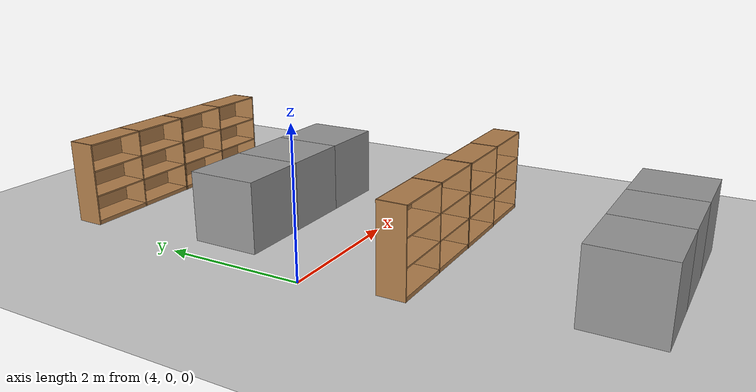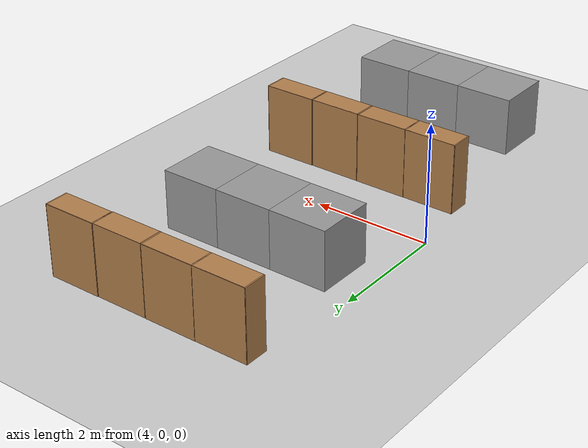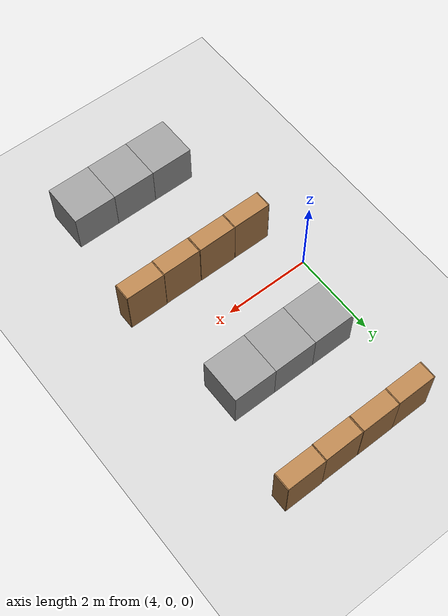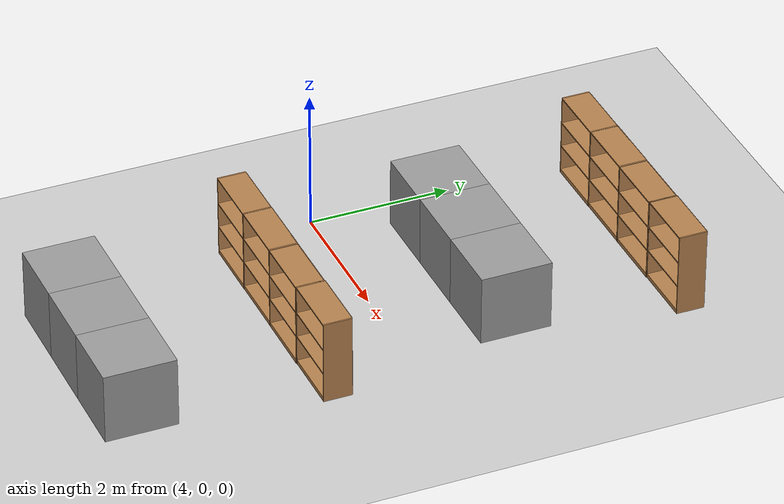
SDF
<sdf version="1.6">
 <world name="default">
  <model name="ground_plane">
   <static>1</static>
   <link name="link">
    <collision name="collision">
     <geometry><plane><normal>0 0 1</normal><size>100 100</size></plane></geometry>
     <surface>
      <contact><collide_bitmask>65535</collide_bitmask></contact>
      <friction><ode><mu>100</mu><mu2>50</mu2></ode></friction>
     </surface>
    </collision>
    <visual name="visual">
     <cast_shadows>0</cast_shadows>
     <geometry><plane><normal>0 0 1</normal><size>100 100</size></plane></geometry>
     <material>
      <script><uri>file://media/materials/scripts/gazebo.material</uri><name>Gazebo/Grey</name></script>
     </material>
    </visual>
   </link>
  </model>
  <model name="shelf_clone_0_clone">
   <model name="bookshelf">
    <static>1</static>
    <link name="link">
     <inertial><mass>1</mass></inertial>
     <collision name="back">
      <pose>0 0.005 0.6 0 -0 0</pose>
      <geometry><box><size>0.9 0.01 1.2</size></box></geometry>
     </collision>
     <visual name="visual1">
      <pose>0 0.005 0.6 0 -0 0</pose>
      <geometry><box><size>0.9 0.01 1.2</size></box></geometry>
      <material>
       <script><uri>file://media/materials/scripts/gazebo.material</uri><name>Gazebo/Wood</name></script>
      </material>
     </visual>
     <collision name="left_side">
      <pose>0.45 -0.195 0.6 0 -0 0</pose>
      <geometry><box><size>0.02 0.4 1.2</size></box></geometry>
     </collision>
     <visual name="visual2">
      <pose>0.45 -0.195 0.6 0 -0 0</pose>
      <geometry><box><size>0.02 0.4 1.2</size></box></geometry>
      <material>
       <script><uri>file://media/materials/scripts/gazebo.material</uri><name>Gazebo/Wood</name></script>
      </material>
     </visual>
     <collision name="right_side">
      <pose>-0.45 -0.195 0.6 0 -0 0</pose>
      <geometry><box><size>0.02 0.4 1.2</size></box></geometry>
     </collision>
     <visual name="visual3">
      <pose>-0.45 -0.195 0.6 0 -0 0</pose>
      <geometry><box><size>0.02 0.4 1.2</size></box></geometry>
      <material>
       <script><uri>file://media/materials/scripts/gazebo.material</uri><name>Gazebo/Wood</name></script>
      </material>
     </visual>
     <collision name="bottom">
      <pose>0 -0.195 0.03 0 -0 0</pose>
      <geometry><box><size>0.88 0.4 0.06</size></box></geometry>
     </collision>
     <visual name="visual4">
      <pose>0 -0.195 0.03 0 -0 0</pose>
      <geometry><box><size>0.88 0.4 0.06</size></box></geometry>
      <material>
       <script><uri>file://media/materials/scripts/gazebo.material</uri><name>Gazebo/Wood</name></script>
      </material>
     </visual>
     <collision name="top">
      <pose>0 -0.195 1.19 0 -0 0</pose>
      <geometry><box><size>0.88 0.4 0.02</size></box></geometry>
     </collision>
     <visual name="visual5">
      <pose>0 -0.195 1.19 0 -0 0</pose>
      <geometry><box><size>0.88 0.4 0.02</size></box></geometry>
      <material>
       <script><uri>file://media/materials/scripts/gazebo.material</uri><name>Gazebo/Wood</name></script>
      </material>
     </visual>
     <collision name="low_shelf">
      <pose>0 -0.195 0.43 0 -0 0</pose>
      <geometry><box><size>0.88 0.4 0.02</size></box></geometry>
     </collision>
     <visual name="visual6">
      <pose>0 -0.195 0.43 0 -0 0</pose>
      <geometry><box><size>0.88 0.4 0.02</size></box></geometry>
      <material>
       <script><uri>file://media/materials/scripts/gazebo.material</uri><name>Gazebo/Wood</name></script>
      </material>
     </visual>
     <collision name="high_shelf">
      <pose>0 -0.195 0.8 0 -0 0</pose>
      <geometry><box><size>0.88 0.4 0.02</size></box></geometry>
     </collision>
     <visual name="visual7">
      <pose>0 -0.195 0.8 0 -0 0</pose>
      <geometry><box><size>0.88 0.4 0.02</size></box></geometry>
      <material>
       <script><uri>file://media/materials/scripts/gazebo.material</uri><name>Gazebo/Wood</name></script>
      </material>
     </visual>
    </link>
    <pose>-1.36031 -0.003398 0 0 -0 0</pose>
   </model>
   <model name="bookshelf_clone">
    <static>1</static>
    <link name="link">
     <inertial><mass>1</mass></inertial>
     <collision name="back">
      <pose>0 0.005 0.6 0 -0 0</pose>
      <geometry><box><size>0.9 0.01 1.2</size></box></geometry>
     </collision>
     <visual name="visual1">
      <pose>0 0.005 0.6 0 -0 0</pose>
      <geometry><box><size>0.9 0.01 1.2</size></box></geometry>
      <material>
       <script><uri>file://media/materials/scripts/gazebo.material</uri><name>Gazebo/Wood</name></script>
      </material>
     </visual>
     <collision name="left_side">
      <pose>0.45 -0.195 0.6 0 -0 0</pose>
      <geometry><box><size>0.02 0.4 1.2</size></box></geometry>
     </collision>
     <visual name="visual2">
      <pose>0.45 -0.195 0.6 0 -0 0</pose>
      <geometry><box><size>0.02 0.4 1.2</size></box></geometry>
      <material>
       <script><uri>file://media/materials/scripts/gazebo.material</uri><name>Gazebo/Wood</name></script>
      </material>
     </visual>
     <collision name="right_side">
      <pose>-0.45 -0.195 0.6 0 -0 0</pose>
      <geometry><box><size>0.02 0.4 1.2</size></box></geometry>
     </collision>
     <visual name="visual3">
      <pose>-0.45 -0.195 0.6 0 -0 0</pose>
      <geometry><box><size>0.02 0.4 1.2</size></box></geometry>
      <material>
       <script><uri>file://media/materials/scripts/gazebo.material</uri><name>Gazebo/Wood</name></script>
      </material>
     </visual>
     <collision name="bottom">
      <pose>0 -0.195 0.03 0 -0 0</pose>
      <geometry><box><size>0.88 0.4 0.06</size></box></geometry>
     </collision>
     <visual name="visual4">
      <pose>0 -0.195 0.03 0 -0 0</pose>
      <geometry><box><size>0.88 0.4 0.06</size></box></geometry>
      <material>
       <script><uri>file://media/materials/scripts/gazebo.material</uri><name>Gazebo/Wood</name></script>
      </material>
     </visual>
     <collision name="top">
      <pose>0 -0.195 1.19 0 -0 0</pose>
      <geometry><box><size>0.88 0.4 0.02</size></box></geometry>
     </collision>
     <visual name="visual5">
      <pose>0 -0.195 1.19 0 -0 0</pose>
      <geometry><box><size>0.88 0.4 0.02</size></box></geometry>
      <material>
       <script><uri>file://media/materials/scripts/gazebo.material</uri><name>Gazebo/Wood</name></script>
      </material>
     </visual>
     <collision name="low_shelf">
      <pose>0 -0.195 0.43 0 -0 0</pose>
      <geometry><box><size>0.88 0.4 0.02</size></box></geometry>
     </collision>
     <visual name="visual6">
      <pose>0 -0.195 0.43 0 -0 0</pose>
      <geometry><box><size>0.88 0.4 0.02</size></box></geometry>
      <material>
       <script><uri>file://media/materials/scripts/gazebo.material</uri><name>Gazebo/Wood</name></script>
      </material>
     </visual>
     <collision name="high_shelf">
      <pose>0 -0.195 0.8 0 -0 0</pose>
      <geometry><box><size>0.88 0.4 0.02</size></box></geometry>
     </collision>
     <visual name="visual7">
      <pose>0 -0.195 0.8 0 -0 0</pose>
      <geometry><box><size>0.88 0.4 0.02</size></box></geometry>
      <material>
       <script><uri>file://media/materials/scripts/gazebo.material</uri><name>Gazebo/Wood</name></script>
      </material>
     </visual>
    </link>
    <pose>-0.456544 -0.000114 0 0 -0 0</pose>
   </model>
   <model name="bookshelf_clone_clone">
    <static>1</static>
    <link name="link">
     <inertial><mass>1</mass></inertial>
     <collision name="back">
      <pose>0 0.005 0.6 0 -0 0</pose>
      <geometry><box><size>0.9 0.01 1.2</size></box></geometry>
     </collision>
     <visual name="visual1">
      <pose>0 0.005 0.6 0 -0 0</pose>
      <geometry><box><size>0.9 0.01 1.2</size></box></geometry>
      <material>
       <script><uri>file://media/materials/scripts/gazebo.material</uri><name>Gazebo/Wood</name></script>
      </material>
     </visual>
     <collision name="left_side">
      <pose>0.45 -0.195 0.6 0 -0 0</pose>
      <geometry><box><size>0.02 0.4 1.2</size></box></geometry>
     </collision>
     <visual name="visual2">
      <pose>0.45 -0.195 0.6 0 -0 0</pose>
      <geometry><box><size>0.02 0.4 1.2</size></box></geometry>
      <material>
       <script><uri>file://media/materials/scripts/gazebo.material</uri><name>Gazebo/Wood</name></script>
      </material>
     </visual>
     <collision name="right_side">
      <pose>-0.45 -0.195 0.6 0 -0 0</pose>
      <geometry><box><size>0.02 0.4 1.2</size></box></geometry>
     </collision>
     <visual name="visual3">
      <pose>-0.45 -0.195 0.6 0 -0 0</pose>
      <geometry><box><size>0.02 0.4 1.2</size></box></geometry>
      <material>
       <script><uri>file://media/materials/scripts/gazebo.material</uri><name>Gazebo/Wood</name></script>
      </material>
     </visual>
     <collision name="bottom">
      <pose>0 -0.195 0.03 0 -0 0</pose>
      <geometry><box><size>0.88 0.4 0.06</size></box></geometry>
     </collision>
     <visual name="visual4">
      <pose>0 -0.195 0.03 0 -0 0</pose>
      <geometry><box><size>0.88 0.4 0.06</size></box></geometry>
      <material>
       <script><uri>file://media/materials/scripts/gazebo.material</uri><name>Gazebo/Wood</name></script>
      </material>
     </visual>
     <collision name="top">
      <pose>0 -0.195 1.19 0 -0 0</pose>
      <geometry><box><size>0.88 0.4 0.02</size></box></geometry>
     </collision>
     <visual name="visual5">
      <pose>0 -0.195 1.19 0 -0 0</pose>
      <geometry><box><size>0.88 0.4 0.02</size></box></geometry>
      <material>
       <script><uri>file://media/materials/scripts/gazebo.material</uri><name>Gazebo/Wood</name></script>
      </material>
     </visual>
     <collision name="low_shelf">
      <pose>0 -0.195 0.43 0 -0 0</pose>
      <geometry><box><size>0.88 0.4 0.02</size></box></geometry>
     </collision>
     <visual name="visual6">
      <pose>0 -0.195 0.43 0 -0 0</pose>
      <geometry><box><size>0.88 0.4 0.02</size></box></geometry>
      <material>
       <script><uri>file://media/materials/scripts/gazebo.material</uri><name>Gazebo/Wood</name></script>
      </material>
     </visual>
     <collision name="high_shelf">
      <pose>0 -0.195 0.8 0 -0 0</pose>
      <geometry><box><size>0.88 0.4 0.02</size></box></geometry>
     </collision>
     <visual name="visual7">
      <pose>0 -0.195 0.8 0 -0 0</pose>
      <geometry><box><size>0.88 0.4 0.02</size></box></geometry>
      <material>
       <script><uri>file://media/materials/scripts/gazebo.material</uri><name>Gazebo/Wood</name></script>
      </material>
     </visual>
    </link>
    <pose>0.456143 -0.001997 0 0 -0 0</pose>
   </model>
   <model name="bookshelf_clone_clone_0">
    <static>1</static>
    <link name="link">
     <inertial><mass>1</mass></inertial>
     <collision name="back">
      <pose>0 0.005 0.6 0 -0 0</pose>
      <geometry><box><size>0.9 0.01 1.2</size></box></geometry>
     </collision>
     <visual name="visual1">
      <pose>0 0.005 0.6 0 -0 0</pose>
      <geometry><box><size>0.9 0.01 1.2</size></box></geometry>
      <material>
       <script><uri>file://media/materials/scripts/gazebo.material</uri><name>Gazebo/Wood</name></script>
      </material>
     </visual>
     <collision name="left_side">
      <pose>0.45 -0.195 0.6 0 -0 0</pose>
      <geometry><box><size>0.02 0.4 1.2</size></box></geometry>
     </collision>
     <visual name="visual2">
      <pose>0.45 -0.195 0.6 0 -0 0</pose>
      <geometry><box><size>0.02 0.4 1.2</size></box></geometry>
      <material>
       <script><uri>file://media/materials/scripts/gazebo.material</uri><name>Gazebo/Wood</name></script>
      </material>
     </visual>
     <collision name="right_side">
      <pose>-0.45 -0.195 0.6 0 -0 0</pose>
      <geometry><box><size>0.02 0.4 1.2</size></box></geometry>
     </collision>
     <visual name="visual3">
      <pose>-0.45 -0.195 0.6 0 -0 0</pose>
      <geometry><box><size>0.02 0.4 1.2</size></box></geometry>
      <material>
       <script><uri>file://media/materials/scripts/gazebo.material</uri><name>Gazebo/Wood</name></script>
      </material>
     </visual>
     <collision name="bottom">
      <pose>0 -0.195 0.03 0 -0 0</pose>
      <geometry><box><size>0.88 0.4 0.06</size></box></geometry>
     </collision>
     <visual name="visual4">
      <pose>0 -0.195 0.03 0 -0 0</pose>
      <geometry><box><size>0.88 0.4 0.06</size></box></geometry>
      <material>
       <script><uri>file://media/materials/scripts/gazebo.material</uri><name>Gazebo/Wood</name></script>
      </material>
     </visual>
     <collision name="top">
      <pose>0 -0.195 1.19 0 -0 0</pose>
      <geometry><box><size>0.88 0.4 0.02</size></box></geometry>
     </collision>
     <visual name="visual5">
      <pose>0 -0.195 1.19 0 -0 0</pose>
      <geometry><box><size>0.88 0.4 0.02</size></box></geometry>
      <material>
       <script><uri>file://media/materials/scripts/gazebo.material</uri><name>Gazebo/Wood</name></script>
      </material>
     </visual>
     <collision name="low_shelf">
      <pose>0 -0.195 0.43 0 -0 0</pose>
      <geometry><box><size>0.88 0.4 0.02</size></box></geometry>
     </collision>
     <visual name="visual6">
      <pose>0 -0.195 0.43 0 -0 0</pose>
      <geometry><box><size>0.88 0.4 0.02</size></box></geometry>
      <material>
       <script><uri>file://media/materials/scripts/gazebo.material</uri><name>Gazebo/Wood</name></script>
      </material>
     </visual>
     <collision name="high_shelf">
      <pose>0 -0.195 0.8 0 -0 0</pose>
      <geometry><box><size>0.88 0.4 0.02</size></box></geometry>
     </collision>
     <visual name="visual7">
      <pose>0 -0.195 0.8 0 -0 0</pose>
      <geometry><box><size>0.88 0.4 0.02</size></box></geometry>
      <material>
       <script><uri>file://media/materials/scripts/gazebo.material</uri><name>Gazebo/Wood</name></script>
      </material>
     </visual>
    </link>
    <pose>1.3607 0.005513 0 0 -0 0</pose>
   </model>
   <static>0</static>
   <pose>6 -1 0 0 -0 0</pose>
  </model>
  <model name="shelf_clone_0_clone_0">
   <model name="bookshelf">
    <static>1</static>
    <link name="link">
     <inertial><mass>1</mass></inertial>
     <collision name="back">
      <pose>0 0.005 0.6 0 -0 0</pose>
      <geometry><box><size>0.9 0.01 1.2</size></box></geometry>
     </collision>
     <visual name="visual1">
      <pose>0 0.005 0.6 0 -0 0</pose>
      <geometry><box><size>0.9 0.01 1.2</size></box></geometry>
      <material>
       <script><uri>file://media/materials/scripts/gazebo.material</uri><name>Gazebo/Wood</name></script>
      </material>
     </visual>
     <collision name="left_side">
      <pose>0.45 -0.195 0.6 0 -0 0</pose>
      <geometry><box><size>0.02 0.4 1.2</size></box></geometry>
     </collision>
     <visual name="visual2">
      <pose>0.45 -0.195 0.6 0 -0 0</pose>
      <geometry><box><size>0.02 0.4 1.2</size></box></geometry>
      <material>
       <script><uri>file://media/materials/scripts/gazebo.material</uri><name>Gazebo/Wood</name></script>
      </material>
     </visual>
     <collision name="right_side">
      <pose>-0.45 -0.195 0.6 0 -0 0</pose>
      <geometry><box><size>0.02 0.4 1.2</size></box></geometry>
     </collision>
     <visual name="visual3">
      <pose>-0.45 -0.195 0.6 0 -0 0</pose>
      <geometry><box><size>0.02 0.4 1.2</size></box></geometry>
      <material>
       <script><uri>file://media/materials/scripts/gazebo.material</uri><name>Gazebo/Wood</name></script>
      </material>
     </visual>
     <collision name="bottom">
      <pose>0 -0.195 0.03 0 -0 0</pose>
      <geometry><box><size>0.88 0.4 0.06</size></box></geometry>
     </collision>
     <visual name="visual4">
      <pose>0 -0.195 0.03 0 -0 0</pose>
      <geometry><box><size>0.88 0.4 0.06</size></box></geometry>
      <material>
       <script><uri>file://media/materials/scripts/gazebo.material</uri><name>Gazebo/Wood</name></script>
      </material>
     </visual>
     <collision name="top">
      <pose>0 -0.195 1.19 0 -0 0</pose>
      <geometry><box><size>0.88 0.4 0.02</size></box></geometry>
     </collision>
     <visual name="visual5">
      <pose>0 -0.195 1.19 0 -0 0</pose>
      <geometry><box><size>0.88 0.4 0.02</size></box></geometry>
      <material>
       <script><uri>file://media/materials/scripts/gazebo.material</uri><name>Gazebo/Wood</name></script>
      </material>
     </visual>
     <collision name="low_shelf">
      <pose>0 -0.195 0.43 0 -0 0</pose>
      <geometry><box><size>0.88 0.4 0.02</size></box></geometry>
     </collision>
     <visual name="visual6">
      <pose>0 -0.195 0.43 0 -0 0</pose>
      <geometry><box><size>0.88 0.4 0.02</size></box></geometry>
      <material>
       <script><uri>file://media/materials/scripts/gazebo.material</uri><name>Gazebo/Wood</name></script>
      </material>
     </visual>
     <collision name="high_shelf">
      <pose>0 -0.195 0.8 0 -0 0</pose>
      <geometry><box><size>0.88 0.4 0.02</size></box></geometry>
     </collision>
     <visual name="visual7">
      <pose>0 -0.195 0.8 0 -0 0</pose>
      <geometry><box><size>0.88 0.4 0.02</size></box></geometry>
      <material>
       <script><uri>file://media/materials/scripts/gazebo.material</uri><name>Gazebo/Wood</name></script>
      </material>
     </visual>
    </link>
    <pose>-1.36031 -0.003398 0 0 -0 0</pose>
   </model>
   <model name="bookshelf_clone">
    <static>1</static>
    <link name="link">
     <inertial><mass>1</mass></inertial>
     <collision name="back">
      <pose>0 0.005 0.6 0 -0 0</pose>
      <geometry><box><size>0.9 0.01 1.2</size></box></geometry>
     </collision>
     <visual name="visual1">
      <pose>0 0.005 0.6 0 -0 0</pose>
      <geometry><box><size>0.9 0.01 1.2</size></box></geometry>
      <material>
       <script><uri>file://media/materials/scripts/gazebo.material</uri><name>Gazebo/Wood</name></script>
      </material>
     </visual>
     <collision name="left_side">
      <pose>0.45 -0.195 0.6 0 -0 0</pose>
      <geometry><box><size>0.02 0.4 1.2</size></box></geometry>
     </collision>
     <visual name="visual2">
      <pose>0.45 -0.195 0.6 0 -0 0</pose>
      <geometry><box><size>0.02 0.4 1.2</size></box></geometry>
      <material>
       <script><uri>file://media/materials/scripts/gazebo.material</uri><name>Gazebo/Wood</name></script>
      </material>
     </visual>
     <collision name="right_side">
      <pose>-0.45 -0.195 0.6 0 -0 0</pose>
      <geometry><box><size>0.02 0.4 1.2</size></box></geometry>
     </collision>
     <visual name="visual3">
      <pose>-0.45 -0.195 0.6 0 -0 0</pose>
      <geometry><box><size>0.02 0.4 1.2</size></box></geometry>
      <material>
       <script><uri>file://media/materials/scripts/gazebo.material</uri><name>Gazebo/Wood</name></script>
      </material>
     </visual>
     <collision name="bottom">
      <pose>0 -0.195 0.03 0 -0 0</pose>
      <geometry><box><size>0.88 0.4 0.06</size></box></geometry>
     </collision>
     <visual name="visual4">
      <pose>0 -0.195 0.03 0 -0 0</pose>
      <geometry><box><size>0.88 0.4 0.06</size></box></geometry>
      <material>
       <script><uri>file://media/materials/scripts/gazebo.material</uri><name>Gazebo/Wood</name></script>
      </material>
     </visual>
     <collision name="top">
      <pose>0 -0.195 1.19 0 -0 0</pose>
      <geometry><box><size>0.88 0.4 0.02</size></box></geometry>
     </collision>
     <visual name="visual5">
      <pose>0 -0.195 1.19 0 -0 0</pose>
      <geometry><box><size>0.88 0.4 0.02</size></box></geometry>
      <material>
       <script><uri>file://media/materials/scripts/gazebo.material</uri><name>Gazebo/Wood</name></script>
      </material>
     </visual>
     <collision name="low_shelf">
      <pose>0 -0.195 0.43 0 -0 0</pose>
      <geometry><box><size>0.88 0.4 0.02</size></box></geometry>
     </collision>
     <visual name="visual6">
      <pose>0 -0.195 0.43 0 -0 0</pose>
      <geometry><box><size>0.88 0.4 0.02</size></box></geometry>
      <material>
       <script><uri>file://media/materials/scripts/gazebo.material</uri><name>Gazebo/Wood</name></script>
      </material>
     </visual>
     <collision name="high_shelf">
      <pose>0 -0.195 0.8 0 -0 0</pose>
      <geometry><box><size>0.88 0.4 0.02</size></box></geometry>
     </collision>
     <visual name="visual7">
      <pose>0 -0.195 0.8 0 -0 0</pose>
      <geometry><box><size>0.88 0.4 0.02</size></box></geometry>
      <material>
       <script><uri>file://media/materials/scripts/gazebo.material</uri><name>Gazebo/Wood</name></script>
      </material>
     </visual>
    </link>
    <pose>-0.456544 -0.000114 0 0 -0 0</pose>
   </model>
   <model name="bookshelf_clone_clone">
    <static>1</static>
    <link name="link">
     <inertial><mass>1</mass></inertial>
     <collision name="back">
      <pose>0 0.005 0.6 0 -0 0</pose>
      <geometry><box><size>0.9 0.01 1.2</size></box></geometry>
     </collision>
     <visual name="visual1">
      <pose>0 0.005 0.6 0 -0 0</pose>
      <geometry><box><size>0.9 0.01 1.2</size></box></geometry>
      <material>
       <script><uri>file://media/materials/scripts/gazebo.material</uri><name>Gazebo/Wood</name></script>
      </material>
     </visual>
     <collision name="left_side">
      <pose>0.45 -0.195 0.6 0 -0 0</pose>
      <geometry><box><size>0.02 0.4 1.2</size></box></geometry>
     </collision>
     <visual name="visual2">
      <pose>0.45 -0.195 0.6 0 -0 0</pose>
      <geometry><box><size>0.02 0.4 1.2</size></box></geometry>
      <material>
       <script><uri>file://media/materials/scripts/gazebo.material</uri><name>Gazebo/Wood</name></script>
      </material>
     </visual>
     <collision name="right_side">
      <pose>-0.45 -0.195 0.6 0 -0 0</pose>
      <geometry><box><size>0.02 0.4 1.2</size></box></geometry>
     </collision>
     <visual name="visual3">
      <pose>-0.45 -0.195 0.6 0 -0 0</pose>
      <geometry><box><size>0.02 0.4 1.2</size></box></geometry>
      <material>
       <script><uri>file://media/materials/scripts/gazebo.material</uri><name>Gazebo/Wood</name></script>
      </material>
     </visual>
     <collision name="bottom">
      <pose>0 -0.195 0.03 0 -0 0</pose>
      <geometry><box><size>0.88 0.4 0.06</size></box></geometry>
     </collision>
     <visual name="visual4">
      <pose>0 -0.195 0.03 0 -0 0</pose>
      <geometry><box><size>0.88 0.4 0.06</size></box></geometry>
      <material>
       <script><uri>file://media/materials/scripts/gazebo.material</uri><name>Gazebo/Wood</name></script>
      </material>
     </visual>
     <collision name="top">
      <pose>0 -0.195 1.19 0 -0 0</pose>
      <geometry><box><size>0.88 0.4 0.02</size></box></geometry>
     </collision>
     <visual name="visual5">
      <pose>0 -0.195 1.19 0 -0 0</pose>
      <geometry><box><size>0.88 0.4 0.02</size></box></geometry>
      <material>
       <script><uri>file://media/materials/scripts/gazebo.material</uri><name>Gazebo/Wood</name></script>
      </material>
     </visual>
     <collision name="low_shelf">
      <pose>0 -0.195 0.43 0 -0 0</pose>
      <geometry><box><size>0.88 0.4 0.02</size></box></geometry>
     </collision>
     <visual name="visual6">
      <pose>0 -0.195 0.43 0 -0 0</pose>
      <geometry><box><size>0.88 0.4 0.02</size></box></geometry>
      <material>
       <script><uri>file://media/materials/scripts/gazebo.material</uri><name>Gazebo/Wood</name></script>
      </material>
     </visual>
     <collision name="high_shelf">
      <pose>0 -0.195 0.8 0 -0 0</pose>
      <geometry><box><size>0.88 0.4 0.02</size></box></geometry>
     </collision>
     <visual name="visual7">
      <pose>0 -0.195 0.8 0 -0 0</pose>
      <geometry><box><size>0.88 0.4 0.02</size></box></geometry>
      <material>
       <script><uri>file://media/materials/scripts/gazebo.material</uri><name>Gazebo/Wood</name></script>
      </material>
     </visual>
    </link>
    <pose>0.456143 -0.001997 0 0 -0 0</pose>
   </model>
   <model name="bookshelf_clone_clone_0">
    <static>1</static>
    <link name="link">
     <inertial><mass>1</mass></inertial>
     <collision name="back">
      <pose>0 0.005 0.6 0 -0 0</pose>
      <geometry><box><size>0.9 0.01 1.2</size></box></geometry>
     </collision>
     <visual name="visual1">
      <pose>0 0.005 0.6 0 -0 0</pose>
      <geometry><box><size>0.9 0.01 1.2</size></box></geometry>
      <material>
       <script><uri>file://media/materials/scripts/gazebo.material</uri><name>Gazebo/Wood</name></script>
      </material>
     </visual>
     <collision name="left_side">
      <pose>0.45 -0.195 0.6 0 -0 0</pose>
      <geometry><box><size>0.02 0.4 1.2</size></box></geometry>
     </collision>
     <visual name="visual2">
      <pose>0.45 -0.195 0.6 0 -0 0</pose>
      <geometry><box><size>0.02 0.4 1.2</size></box></geometry>
      <material>
       <script><uri>file://media/materials/scripts/gazebo.material</uri><name>Gazebo/Wood</name></script>
      </material>
     </visual>
     <collision name="right_side">
      <pose>-0.45 -0.195 0.6 0 -0 0</pose>
      <geometry><box><size>0.02 0.4 1.2</size></box></geometry>
     </collision>
     <visual name="visual3">
      <pose>-0.45 -0.195 0.6 0 -0 0</pose>
      <geometry><box><size>0.02 0.4 1.2</size></box></geometry>
      <material>
       <script><uri>file://media/materials/scripts/gazebo.material</uri><name>Gazebo/Wood</name></script>
      </material>
     </visual>
     <collision name="bottom">
      <pose>0 -0.195 0.03 0 -0 0</pose>
      <geometry><box><size>0.88 0.4 0.06</size></box></geometry>
     </collision>
     <visual name="visual4">
      <pose>0 -0.195 0.03 0 -0 0</pose>
      <geometry><box><size>0.88 0.4 0.06</size></box></geometry>
      <material>
       <script><uri>file://media/materials/scripts/gazebo.material</uri><name>Gazebo/Wood</name></script>
      </material>
     </visual>
     <collision name="top">
      <pose>0 -0.195 1.19 0 -0 0</pose>
      <geometry><box><size>0.88 0.4 0.02</size></box></geometry>
     </collision>
     <visual name="visual5">
      <pose>0 -0.195 1.19 0 -0 0</pose>
      <geometry><box><size>0.88 0.4 0.02</size></box></geometry>
      <material>
       <script><uri>file://media/materials/scripts/gazebo.material</uri><name>Gazebo/Wood</name></script>
      </material>
     </visual>
     <collision name="low_shelf">
      <pose>0 -0.195 0.43 0 -0 0</pose>
      <geometry><box><size>0.88 0.4 0.02</size></box></geometry>
     </collision>
     <visual name="visual6">
      <pose>0 -0.195 0.43 0 -0 0</pose>
      <geometry><box><size>0.88 0.4 0.02</size></box></geometry>
      <material>
       <script><uri>file://media/materials/scripts/gazebo.material</uri><name>Gazebo/Wood</name></script>
      </material>
     </visual>
     <collision name="high_shelf">
      <pose>0 -0.195 0.8 0 -0 0</pose>
      <geometry><box><size>0.88 0.4 0.02</size></box></geometry>
     </collision>
     <visual name="visual7">
      <pose>0 -0.195 0.8 0 -0 0</pose>
      <geometry><box><size>0.88 0.4 0.02</size></box></geometry>
      <material>
       <script><uri>file://media/materials/scripts/gazebo.material</uri><name>Gazebo/Wood</name></script>
      </material>
     </visual>
    </link>
    <pose>1.3607 0.005513 0 0 -0 0</pose>
   </model>
   <static>0</static>
   <pose>6 4 0 0 -0 0</pose>
  </model>
  <model name="unit_box">
   <link name="link">
    <inertial>
     <mass>10</mass>
     <inertia>
      <ixx>0.166667</ixx>
      <ixy>0</ixy>
      <ixz>0</ixz>
      <iyy>0.166667</iyy>
      <iyz>0</iyz>
      <izz>0.166667</izz>
     </inertia>
    </inertial>
    <visual name="visual">
     <geometry><box><size>1 1 1</size></box></geometry>
     <material>
      <script><name>Gazebo/Grey</name><uri>file://media/materials/scripts/gazebo.material</uri></script>
      <shader type="pixel"><normal_map>__default__</normal_map></shader>
      <ambient>0.3 0.3 0.3 1</ambient>
      <diffuse>0.7 0.7 0.7 1</diffuse>
      <specular>0.01 0.01 0.01 1</specular>
      <emissive>0 0 0 1</emissive>
     </material>
    </visual>
    <collision name="collision">
     <geometry><box><size>1 1 1</size></box></geometry>
     <surface>
      <friction>
       <ode><mu>1</mu><mu2>1</mu2><fdir1>0 0 0</fdir1><slip1>0</slip1><slip2>0</slip2></ode>
       <torsional>
        <coefficient>1</coefficient>
        <patch_radius>0</patch_radius>
        <surface_radius>0</surface_radius>
        <use_patch_radius>1</use_patch_radius>
        <ode><slip>0</slip></ode>
       </torsional>
      </friction>
      <bounce><restitution_coefficient>0</restitution_coefficient><threshold>1e+06</threshold></bounce>
      <contact>
       <collide_without_contact>0</collide_without_contact>
       <collide_without_contact_bitmask>1</collide_without_contact_bitmask>
       <collide_bitmask>1</collide_bitmask>
       <ode>
        <soft_cfm>0</soft_cfm>
        <soft_erp>0.2</soft_erp>
        <kp>1e+13</kp>
        <kd>1</kd>
        <max_vel>0.01</max_vel>
        <min_depth>0</min_depth>
       </ode>
       <bullet>
        <split_impulse>1</split_impulse>
        <split_impulse_penetration_threshold>-0.01</split_impulse_penetration_threshold>
        <soft_cfm>0</soft_cfm>
        <soft_erp>0.2</soft_erp>
        <kp>1e+13</kp>
        <kd>1</kd>
       </bullet>
      </contact>
     </surface>
    </collision>
   </link>
   <link name="link_0">
    <pose>-1 0 0 0 -0 0</pose>
    <inertial>
     <mass>10</mass>
     <inertia>
      <ixx>0.166667</ixx>
      <ixy>0</ixy>
      <ixz>0</ixz>
      <iyy>0.166667</iyy>
      <iyz>0</iyz>
      <izz>0.166667</izz>
     </inertia>
    </inertial>
    <visual name="visual">
     <geometry><box><size>1 1 1</size></box></geometry>
     <material>
      <lighting>1</lighting>
      <script><uri>file://media/materials/scripts/gazebo.material</uri><name>Gazebo/Grey</name></script>
      <shader type="pixel"><normal_map>__default__</normal_map></shader>
      <ambient>0.3 0.3 0.3 1</ambient>
      <diffuse>0.7 0.7 0.7 1</diffuse>
      <specular>0.01 0.01 0.01 1</specular>
      <emissive>0 0 0 1</emissive>
     </material>
    </visual>
    <collision name="collision">
     <geometry><box><size>1 1 1</size></box></geometry>
     <surface>
      <friction>
       <ode><mu>1</mu><mu2>1</mu2><fdir1>0 0 0</fdir1><slip1>0</slip1><slip2>0</slip2></ode>
       <torsional>
        <coefficient>1</coefficient>
        <patch_radius>0</patch_radius>
        <surface_radius>0</surface_radius>
        <use_patch_radius>1</use_patch_radius>
        <ode><slip>0</slip></ode>
       </torsional>
      </friction>
      <bounce><restitution_coefficient>0</restitution_coefficient><threshold>1e+06</threshold></bounce>
      <contact>
       <collide_without_contact>0</collide_without_contact>
       <collide_without_contact_bitmask>1</collide_without_contact_bitmask>
       <collide_bitmask>1</collide_bitmask>
       <ode>
        <soft_cfm>0</soft_cfm>
        <soft_erp>0.2</soft_erp>
        <kp>1e+13</kp>
        <kd>1</kd>
        <max_vel>0.01</max_vel>
        <min_depth>0</min_depth>
       </ode>
       <bullet>
        <split_impulse>1</split_impulse>
        <split_impulse_penetration_threshold>-0.01</split_impulse_penetration_threshold>
        <soft_cfm>0</soft_cfm>
        <soft_erp>0.2</soft_erp>
        <kp>1e+13</kp>
        <kd>1</kd>
       </bullet>
      </contact>
     </surface>
    </collision>
   </link>
   <link name="link_0_clone">
    <pose>-2 0 0 0 -0 0</pose>
    <inertial>
     <mass>10</mass>
     <inertia>
      <ixx>0.166667</ixx>
      <ixy>0</ixy>
      <ixz>0</ixz>
      <iyy>0.166667</iyy>
      <iyz>0</iyz>
      <izz>0.166667</izz>
     </inertia>
    </inertial>
    <visual name="visual">
     <geometry><box><size>1 1 1</size></box></geometry>
     <material>
      <lighting>1</lighting>
      <script><uri>file://media/materials/scripts/gazebo.material</uri><name>Gazebo/Grey</name></script>
      <shader type="pixel"><normal_map>__default__</normal_map></shader>
      <ambient>0.3 0.3 0.3 1</ambient>
      <diffuse>0.7 0.7 0.7 1</diffuse>
      <specular>0.01 0.01 0.01 1</specular>
      <emissive>0 0 0 1</emissive>
     </material>
    </visual>
    <collision name="collision">
     <geometry><box><size>1 1 1</size></box></geometry>
     <surface>
      <friction>
       <ode><mu>1</mu><mu2>1</mu2><fdir1>0 0 0</fdir1><slip1>0</slip1><slip2>0</slip2></ode>
       <torsional>
        <coefficient>1</coefficient>
        <patch_radius>0</patch_radius>
        <surface_radius>0</surface_radius>
        <use_patch_radius>1</use_patch_radius>
        <ode><slip>0</slip></ode>
       </torsional>
      </friction>
      <bounce><restitution_coefficient>0</restitution_coefficient><threshold>1e+06</threshold></bounce>
      <contact>
       <collide_without_contact>0</collide_without_contact>
       <collide_without_contact_bitmask>1</collide_without_contact_bitmask>
       <collide_bitmask>1</collide_bitmask>
       <ode>
        <soft_cfm>0</soft_cfm>
        <soft_erp>0.2</soft_erp>
        <kp>1e+13</kp>
        <kd>1</kd>
        <max_vel>0.01</max_vel>
        <min_depth>0</min_depth>
       </ode>
       <bullet>
        <split_impulse>1</split_impulse>
        <split_impulse_penetration_threshold>-0.01</split_impulse_penetration_threshold>
        <soft_cfm>0</soft_cfm>
        <soft_erp>0.2</soft_erp>
        <kp>1e+13</kp>
        <kd>1</kd>
       </bullet>
      </contact>
     </surface>
    </collision>
   </link>
   <joint name="link_0_JOINT_2" type="fixed">
    <parent>link_0</parent>
    <child>link_0_clone</child>
    <physics>
     <ode><limit><cfm>0</cfm><erp>0.2</erp></limit><suspension><cfm>0</cfm><erp>0.2</erp></suspension></ode>
    </physics>
   </joint>
   <joint name="link_JOINT_0" type="fixed">
    <parent>link</parent>
    <child>link_0</child>
    <physics>
     <ode><limit><cfm>0</cfm><erp>0.2</erp></limit><suspension><cfm>0</cfm><erp>0.2</erp></suspension></ode>
    </physics>
   </joint>
   <static>1</static>
   <pose>7.03926 -3.76273 0.5 0 -0 0</pose>
  </model>
  <model name="unit_box_clone">
   <link name="link">
    <inertial>
     <mass>10</mass>
     <inertia>
      <ixx>0.166667</ixx>
      <ixy>0</ixy>
      <ixz>0</ixz>
      <iyy>0.166667</iyy>
      <iyz>0</iyz>
      <izz>0.166667</izz>
     </inertia>
    </inertial>
    <visual name="visual">
     <geometry><box><size>1 1 1</size></box></geometry>
     <material>
      <script><name>Gazebo/Grey</name><uri>file://media/materials/scripts/gazebo.material</uri></script>
      <shader type="pixel"><normal_map>__default__</normal_map></shader>
      <ambient>0.3 0.3 0.3 1</ambient>
      <diffuse>0.7 0.7 0.7 1</diffuse>
      <specular>0.01 0.01 0.01 1</specular>
      <emissive>0 0 0 1</emissive>
     </material>
    </visual>
    <collision name="collision">
     <geometry><box><size>1 1 1</size></box></geometry>
     <surface>
      <friction>
       <ode><mu>1</mu><mu2>1</mu2><fdir1>0 0 0</fdir1><slip1>0</slip1><slip2>0</slip2></ode>
       <torsional>
        <coefficient>1</coefficient>
        <patch_radius>0</patch_radius>
        <surface_radius>0</surface_radius>
        <use_patch_radius>1</use_patch_radius>
        <ode><slip>0</slip></ode>
       </torsional>
      </friction>
      <bounce><restitution_coefficient>0</restitution_coefficient><threshold>1e+06</threshold></bounce>
      <contact>
       <collide_without_contact>0</collide_without_contact>
       <collide_without_contact_bitmask>1</collide_without_contact_bitmask>
       <collide_bitmask>1</collide_bitmask>
       <ode>
        <soft_cfm>0</soft_cfm>
        <soft_erp>0.2</soft_erp>
        <kp>1e+13</kp>
        <kd>1</kd>
        <max_vel>0.01</max_vel>
        <min_depth>0</min_depth>
       </ode>
       <bullet>
        <split_impulse>1</split_impulse>
        <split_impulse_penetration_threshold>-0.01</split_impulse_penetration_threshold>
        <soft_cfm>0</soft_cfm>
        <soft_erp>0.2</soft_erp>
        <kp>1e+13</kp>
        <kd>1</kd>
       </bullet>
      </contact>
     </surface>
    </collision>
   </link>
   <link name="link_0">
    <pose>-1 0 0 0 -0 0</pose>
    <inertial>
     <mass>10</mass>
     <inertia>
      <ixx>0.166667</ixx>
      <ixy>0</ixy>
      <ixz>0</ixz>
      <iyy>0.166667</iyy>
      <iyz>0</iyz>
      <izz>0.166667</izz>
     </inertia>
    </inertial>
    <visual name="visual">
     <geometry><box><size>1 1 1</size></box></geometry>
     <material>
      <lighting>1</lighting>
      <script><uri>file://media/materials/scripts/gazebo.material</uri><name>Gazebo/Grey</name></script>
      <shader type="pixel"><normal_map>__default__</normal_map></shader>
      <ambient>0.3 0.3 0.3 1</ambient>
      <diffuse>0.7 0.7 0.7 1</diffuse>
      <specular>0.01 0.01 0.01 1</specular>
      <emissive>0 0 0 1</emissive>
     </material>
    </visual>
    <collision name="collision">
     <geometry><box><size>1 1 1</size></box></geometry>
     <surface>
      <friction>
       <ode><mu>1</mu><mu2>1</mu2><fdir1>0 0 0</fdir1><slip1>0</slip1><slip2>0</slip2></ode>
       <torsional>
        <coefficient>1</coefficient>
        <patch_radius>0</patch_radius>
        <surface_radius>0</surface_radius>
        <use_patch_radius>1</use_patch_radius>
        <ode><slip>0</slip></ode>
       </torsional>
      </friction>
      <bounce><restitution_coefficient>0</restitution_coefficient><threshold>1e+06</threshold></bounce>
      <contact>
       <collide_without_contact>0</collide_without_contact>
       <collide_without_contact_bitmask>1</collide_without_contact_bitmask>
       <collide_bitmask>1</collide_bitmask>
       <ode>
        <soft_cfm>0</soft_cfm>
        <soft_erp>0.2</soft_erp>
        <kp>1e+13</kp>
        <kd>1</kd>
        <max_vel>0.01</max_vel>
        <min_depth>0</min_depth>
       </ode>
       <bullet>
        <split_impulse>1</split_impulse>
        <split_impulse_penetration_threshold>-0.01</split_impulse_penetration_threshold>
        <soft_cfm>0</soft_cfm>
        <soft_erp>0.2</soft_erp>
        <kp>1e+13</kp>
        <kd>1</kd>
       </bullet>
      </contact>
     </surface>
    </collision>
   </link>
   <link name="link_0_clone">
    <pose>-2 0 0 0 -0 0</pose>
    <inertial>
     <mass>10</mass>
     <inertia>
      <ixx>0.166667</ixx>
      <ixy>0</ixy>
      <ixz>0</ixz>
      <iyy>0.166667</iyy>
      <iyz>0</iyz>
      <izz>0.166667</izz>
     </inertia>
    </inertial>
    <visual name="visual">
     <geometry><box><size>1 1 1</size></box></geometry>
     <material>
      <lighting>1</lighting>
      <script><uri>file://media/materials/scripts/gazebo.material</uri><name>Gazebo/Grey</name></script>
      <shader type="pixel"><normal_map>__default__</normal_map></shader>
      <ambient>0.3 0.3 0.3 1</ambient>
      <diffuse>0.7 0.7 0.7 1</diffuse>
      <specular>0.01 0.01 0.01 1</specular>
      <emissive>0 0 0 1</emissive>
     </material>
    </visual>
    <collision name="collision">
     <geometry><box><size>1 1 1</size></box></geometry>
     <surface>
      <friction>
       <ode><mu>1</mu><mu2>1</mu2><fdir1>0 0 0</fdir1><slip1>0</slip1><slip2>0</slip2></ode>
       <torsional>
        <coefficient>1</coefficient>
        <patch_radius>0</patch_radius>
        <surface_radius>0</surface_radius>
        <use_patch_radius>1</use_patch_radius>
        <ode><slip>0</slip></ode>
       </torsional>
      </friction>
      <bounce><restitution_coefficient>0</restitution_coefficient><threshold>1e+06</threshold></bounce>
      <contact>
       <collide_without_contact>0</collide_without_contact>
       <collide_without_contact_bitmask>1</collide_without_contact_bitmask>
       <collide_bitmask>1</collide_bitmask>
       <ode>
        <soft_cfm>0</soft_cfm>
        <soft_erp>0.2</soft_erp>
        <kp>1e+13</kp>
        <kd>1</kd>
        <max_vel>0.01</max_vel>
        <min_depth>0</min_depth>
       </ode>
       <bullet>
        <split_impulse>1</split_impulse>
        <split_impulse_penetration_threshold>-0.01</split_impulse_penetration_threshold>
        <soft_cfm>0</soft_cfm>
        <soft_erp>0.2</soft_erp>
        <kp>1e+13</kp>
        <kd>1</kd>
       </bullet>
      </contact>
     </surface>
    </collision>
   </link>
   <joint name="link_0_JOINT_2" type="fixed">
    <parent>link_0</parent>
    <child>link_0_clone</child>
    <physics>
     <ode><limit><cfm>0</cfm><erp>0.2</erp></limit><suspension><cfm>0</cfm><erp>0.2</erp></suspension></ode>
    </physics>
   </joint>
   <joint name="link_JOINT_0" type="fixed">
    <parent>link</parent>
    <child>link_0</child>
    <physics>
     <ode><limit><cfm>0</cfm><erp>0.2</erp></limit><suspension><cfm>0</cfm><erp>0.2</erp></suspension></ode>
    </physics>
   </joint>
   <static>1</static>
   <pose>6.92541 1.48142 0.5 0 -0 0</pose>
  </model>
 </world>
</sdf>
